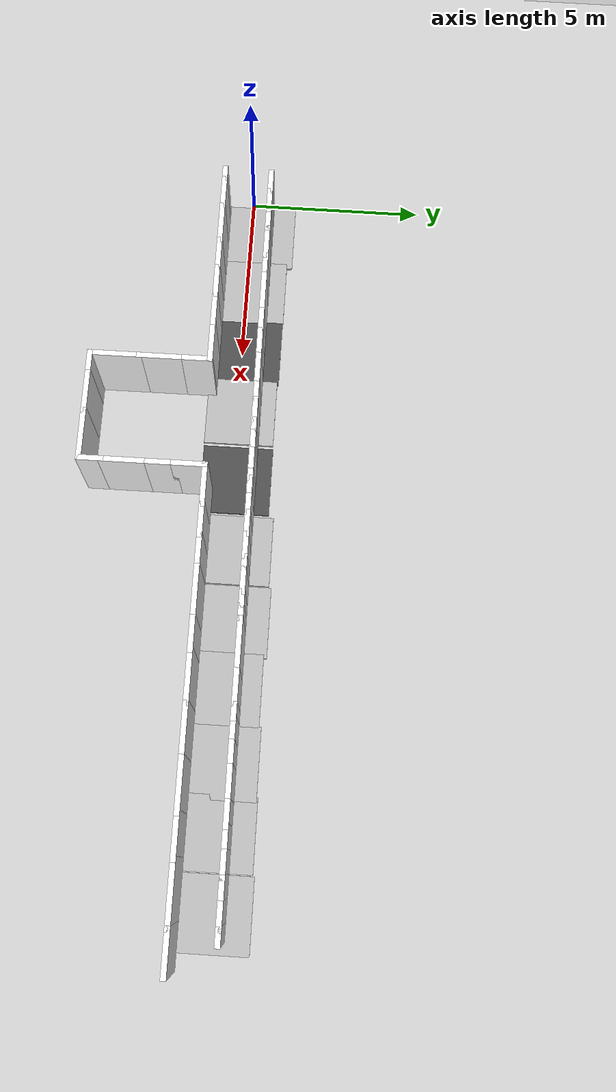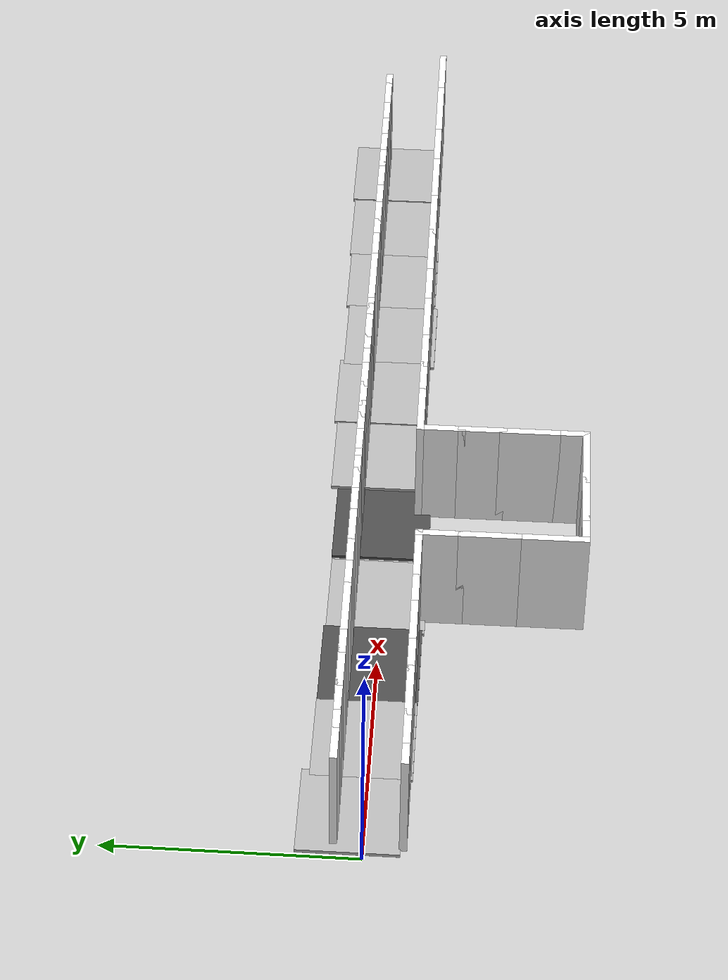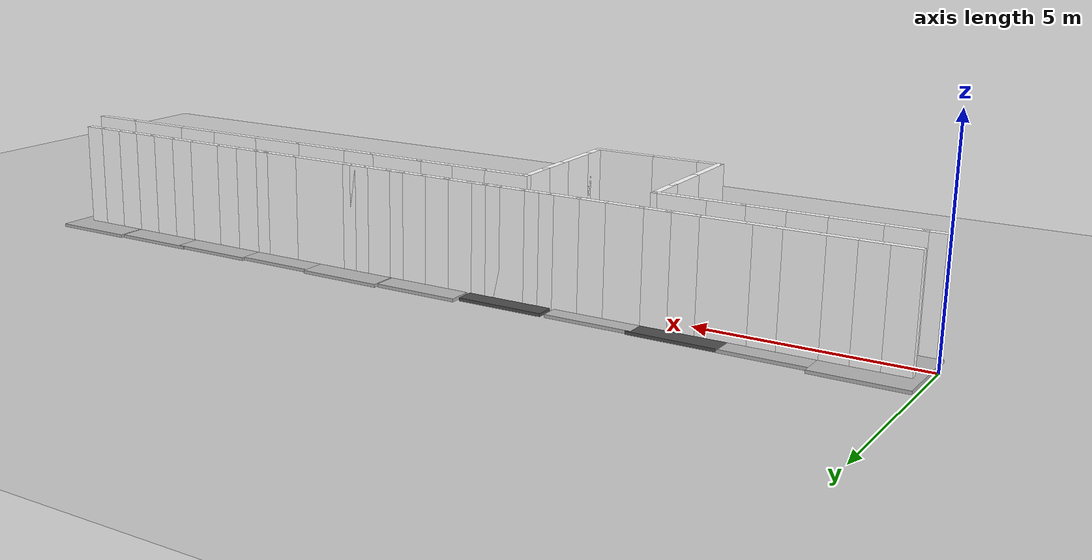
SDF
<sdf version="1.6">
 <world name="default">
  <model name="ground_plane">
   <static>1</static>
   <link name="link">
    <collision name="collision">
     <geometry><plane><normal>0 0 1</normal><size>100 100</size></plane></geometry>
     <surface><friction><ode><mu>100</mu><mu2>50</mu2></ode></friction></surface>
    </collision>
    <visual name="visual">
     <cast_shadows>0</cast_shadows>
     <geometry><plane><normal>0 0 1</normal><size>100 100</size></plane></geometry>
     <material>
      <script><uri>file://media/materials/scripts/gazebo.material</uri><name>Gazebo/Grey</name></script>
     </material>
    </visual>
   </link>
  </model>
  <model name="hightextured">
   <pose>14.0303 4.95039 0 0 0 -1.56774</pose>
   <link name="Wall_100">
    <collision name="Wall_100_Collision">
     <geometry><box><size>0.75 0.15 2.5</size></box></geometry>
     <pose>0 0 1.25 0 -0 0</pose>
    </collision>
    <visual name="Wall_100_Visual">
     <pose>0 0 1.25 0 -0 0</pose>
     <geometry><box><size>0.75 0.15 2.5</size></box></geometry>
     <material>
      <script><uri>file://media/materials/scripts/gazebo.material</uri><name>Gazebo/Texture3</name></script>
      <ambient>1 1 1 1</ambient>
     </material>
    </visual>
    <pose>4.33794 -5.0733 0 0 0 -1.5708</pose>
   </link>
   <link name="Wall_101">
    <collision name="Wall_101_Collision">
     <geometry><box><size>0.5 0.15 2.5</size></box></geometry>
     <pose>0 0 1.25 0 -0 0</pose>
    </collision>
    <visual name="Wall_101_Visual">
     <pose>0 0 1.25 0 -0 0</pose>
     <geometry><box><size>0.5 0.15 2.5</size></box></geometry>
     <material>
      <script><uri>file://media/materials/scripts/gazebo.material</uri><name>Gazebo/Texture11</name></script>
      <ambient>1 1 1 1</ambient>
     </material>
    </visual>
    <pose>4.33794 -5.5483 0 0 0 -1.5708</pose>
   </link>
   <link name="Wall_102">
    <collision name="Wall_102_Collision">
     <geometry><box><size>0.5 0.15 2.5</size></box></geometry>
     <pose>0 0 1.25 0 -0 0</pose>
    </collision>
    <visual name="Wall_102_Visual">
     <pose>0 0 1.25 0 -0 0</pose>
     <geometry><box><size>0.5 0.15 2.5</size></box></geometry>
     <material>
      <script><uri>file://media/materials/scripts/gazebo.material</uri><name>Gazebo/Texture4</name></script>
      <ambient>1 1 1 1</ambient>
     </material>
    </visual>
    <pose>4.33794 -5.8983 0 0 0 -1.5708</pose>
   </link>
   <link name="Wall_103">
    <collision name="Wall_103_Collision">
     <geometry><box><size>0.75 0.15 2.5</size></box></geometry>
     <pose>0 0 1.25 0 -0 0</pose>
    </collision>
    <visual name="Wall_103_Visual">
     <pose>0 0 1.25 0 -0 0</pose>
     <geometry><box><size>0.75 0.15 2.5</size></box></geometry>
     <material>
      <script><uri>file://media/materials/scripts/gazebo.material</uri><name>Gazebo/Texture5</name></script>
      <ambient>1 1 1 1</ambient>
     </material>
    </visual>
    <pose>4.33794 -6.3733 0 0 0 -1.5708</pose>
   </link>
   <link name="Wall_104">
    <collision name="Wall_104_Collision">
     <geometry><box><size>0.75 0.15 2.5</size></box></geometry>
     <pose>0 0 1.25 0 -0 0</pose>
    </collision>
    <visual name="Wall_104_Visual">
     <pose>0 0 1.25 0 -0 0</pose>
     <geometry><box><size>0.75 0.15 2.5</size></box></geometry>
     <material>
      <script><uri>file://media/materials/scripts/gazebo.material</uri><name>Gazebo/Texture6</name></script>
      <ambient>1 1 1 1</ambient>
     </material>
    </visual>
    <pose>4.33794 -6.9733 0 0 0 -1.5708</pose>
   </link>
   <link name="Wall_105">
    <collision name="Wall_105_Collision">
     <geometry><box><size>1 0.15 2.5</size></box></geometry>
     <pose>0 0 1.25 0 -0 0</pose>
    </collision>
    <visual name="Wall_105_Visual">
     <pose>0 0 1.25 0 -0 0</pose>
     <geometry><box><size>1 0.15 2.5</size></box></geometry>
     <material>
      <script><uri>file://media/materials/scripts/gazebo.material</uri><name>Gazebo/Texture7</name></script>
      <ambient>1 1 1 1</ambient>
     </material>
    </visual>
    <pose>4.33794 -7.6983 0 0 0 -1.5708</pose>
   </link>
   <link name="Wall_106">
    <collision name="Wall_106_Collision">
     <geometry><box><size>0.75 0.15 2.5</size></box></geometry>
     <pose>0 0 1.25 0 -0 0</pose>
    </collision>
    <visual name="Wall_106_Visual">
     <pose>0 0 1.25 0 -0 0</pose>
     <geometry><box><size>0.75 0.15 2.5</size></box></geometry>
     <material>
      <script><uri>file://media/materials/scripts/gazebo.material</uri><name>Gazebo/Texture8</name></script>
      <ambient>1 1 1 1</ambient>
     </material>
    </visual>
    <pose>4.33794 -8.4233 0 0 0 -1.5708</pose>
   </link>
   <link name="Wall_107">
    <collision name="Wall_107_Collision">
     <geometry><box><size>0.75 0.15 2.5</size></box></geometry>
     <pose>0 0 1.25 0 -0 0</pose>
    </collision>
    <visual name="Wall_107_Visual">
     <pose>0 0 1.25 0 -0 0</pose>
     <geometry><box><size>0.75 0.15 2.5</size></box></geometry>
     <material>
      <script><uri>file://media/materials/scripts/gazebo.material</uri><name>Gazebo/Texture9</name></script>
      <ambient>1 1 1 1</ambient>
     </material>
    </visual>
    <pose>4.33794 -9.0233 0 0 0 -1.5708</pose>
   </link>
   <link name="Wall_108">
    <collision name="Wall_108_Collision">
     <geometry><box><size>1.25 0.15 2.5</size></box></geometry>
     <pose>0 0 1.25 0 -0 0</pose>
    </collision>
    <visual name="Wall_108_Visual">
     <pose>0 0 1.25 0 -0 0</pose>
     <geometry><box><size>1.25 0.15 2.5</size></box></geometry>
     <material>
      <script><uri>file://media/materials/scripts/gazebo.material</uri><name>Gazebo/Texture10</name></script>
      <ambient>1 1 1 1</ambient>
     </material>
    </visual>
    <pose>4.33794 -9.8733 0 0 0 -1.5708</pose>
   </link>
   <link name="Wall_109">
    <collision name="Wall_109_Collision">
     <geometry><box><size>0.75 0.15 2.5</size></box></geometry>
     <pose>0 0 1.25 0 -0 0</pose>
    </collision>
    <visual name="Wall_109_Visual">
     <pose>0 0 1.25 0 -0 0</pose>
     <geometry><box><size>0.75 0.15 2.5</size></box></geometry>
     <material>
      <script><uri>file://media/materials/scripts/gazebo.material</uri><name>Gazebo/Texture11</name></script>
      <ambient>1 1 1 1</ambient>
     </material>
    </visual>
    <pose>4.33794 -10.7233 0 0 0 -1.5708</pose>
   </link>
   <link name="Wall_110">
    <collision name="Wall_110_Collision">
     <geometry><box><size>1 0.15 2.5</size></box></geometry>
     <pose>0 0 1.25 0 -0 0</pose>
    </collision>
    <visual name="Wall_110_Visual">
     <pose>0 0 1.25 0 -0 0</pose>
     <geometry><box><size>1 0.15 2.5</size></box></geometry>
     <material>
      <script><uri>file://media/materials/scripts/gazebo.material</uri><name>Gazebo/Texture13</name></script>
      <ambient>1 1 1 1</ambient>
     </material>
    </visual>
    <pose>4.33794 -11.4483 0 0 0 -1.5708</pose>
   </link>
   <link name="Wall_111">
    <collision name="Wall_111_Collision">
     <geometry><box><size>0.75 0.15 2.5</size></box></geometry>
     <pose>0 0 1.25 0 -0 0</pose>
    </collision>
    <visual name="Wall_111_Visual">
     <pose>0 0 1.25 0 -0 0</pose>
     <geometry><box><size>0.75 0.15 2.5</size></box></geometry>
     <material>
      <script><uri>file://media/materials/scripts/gazebo.material</uri><name>Gazebo/Texture14</name></script>
      <ambient>1 1 1 1</ambient>
     </material>
    </visual>
    <pose>4.33794 -12.1733 0 0 0 -1.5708</pose>
   </link>
   <link name="Wall_112">
    <collision name="Wall_112_Collision">
     <geometry><box><size>0.75 0.15 2.5</size></box></geometry>
     <pose>0 0 1.25 0 -0 0</pose>
    </collision>
    <visual name="Wall_112_Visual">
     <pose>0 0 1.25 0 -0 0</pose>
     <geometry><box><size>0.75 0.15 2.5</size></box></geometry>
     <material>
      <script><uri>file://media/materials/scripts/gazebo.material</uri><name>Gazebo/Texture15</name></script>
      <ambient>1 1 1 1</ambient>
     </material>
    </visual>
    <pose>4.33794 -12.7733 0 0 0 -1.5708</pose>
   </link>
   <link name="Wall_113">
    <collision name="Wall_113_Collision">
     <geometry><box><size>0.75 0.15 2.5</size></box></geometry>
     <pose>0 0 1.25 0 -0 0</pose>
    </collision>
    <visual name="Wall_113_Visual">
     <pose>0 0 1.25 0 -0 0</pose>
     <geometry><box><size>0.75 0.15 2.5</size></box></geometry>
     <material>
      <script><uri>file://media/materials/scripts/gazebo.material</uri><name>Gazebo/Texture16</name></script>
      <ambient>1 1 1 1</ambient>
     </material>
    </visual>
    <pose>4.33794 -13.3733 0 0 0 -1.5708</pose>
   </link>
   <link name="Wall_123">
    <collision name="Wall_123_Collision">
     <geometry><box><size>1.25 0.15 2.5</size></box></geometry>
     <pose>0 0 1.25 0 -0 0</pose>
    </collision>
    <visual name="Wall_123_Visual">
     <pose>0 0 1.25 0 -0 0</pose>
     <geometry><box><size>1.25 0.15 2.5</size></box></geometry>
     <material>
      <script><uri>file://media/materials/scripts/gazebo.material</uri><name>Gazebo/Texture12</name></script>
      <ambient>1 1 1 1</ambient>
     </material>
    </visual>
    <pose>5.56206 7.5733 0 0 0 -1.5708</pose>
   </link>
   <link name="Wall_124">
    <collision name="Wall_124_Collision">
     <geometry><box><size>1.75 0.15 2.5</size></box></geometry>
     <pose>0 0 1.25 0 -0 0</pose>
    </collision>
    <visual name="Wall_124_Visual">
     <pose>0 0 1.25 0 -0 0</pose>
     <geometry><box><size>1.75 0.15 2.5</size></box></geometry>
     <material>
      <script><uri>file://media/materials/scripts/gazebo.material</uri><name>Gazebo/Texture11</name></script>
      <ambient>1 1 1 1</ambient>
     </material>
    </visual>
    <pose>5.56206 6.2233 0 0 0 -1.5708</pose>
   </link>
   <link name="Wall_125">
    <collision name="Wall_125_Collision">
     <geometry><box><size>1.25 0.15 2.5</size></box></geometry>
     <pose>0 0 1.25 0 -0 0</pose>
    </collision>
    <visual name="Wall_125_Visual">
     <pose>0 0 1.25 0 -0 0</pose>
     <geometry><box><size>1.25 0.15 2.5</size></box></geometry>
     <material>
      <script><uri>file://media/materials/scripts/gazebo.material</uri><name>Gazebo/Texture10</name></script>
      <ambient>1 1 1 1</ambient>
     </material>
    </visual>
    <pose>5.56206 4.8733 0 0 0 -1.5708</pose>
   </link>
   <link name="Wall_126">
    <collision name="Wall_126_Collision">
     <geometry><box><size>1.5 0.15 2.5</size></box></geometry>
     <pose>0 0 1.25 0 -0 0</pose>
    </collision>
    <visual name="Wall_126_Visual">
     <pose>0 0 1.25 0 -0 0</pose>
     <geometry><box><size>1.5 0.15 2.5</size></box></geometry>
     <material>
      <script><uri>file://media/materials/scripts/gazebo.material</uri><name>Gazebo/Texture9</name></script>
      <ambient>1 1 1 1</ambient>
     </material>
    </visual>
    <pose>5.56206 3.6483 0 0 0 -1.5708</pose>
   </link>
   <link name="Wall_127">
    <collision name="Wall_127_Collision">
     <geometry><box><size>1.5 0.15 2.5</size></box></geometry>
     <pose>0 0 1.25 0 -0 0</pose>
    </collision>
    <visual name="Wall_127_Visual">
     <pose>0 0 1.25 0 -0 0</pose>
     <geometry><box><size>1.5 0.15 2.5</size></box></geometry>
     <material>
      <script><uri>file://media/materials/scripts/gazebo.material</uri><name>Gazebo/Texture8</name></script>
      <ambient>1 1 1 1</ambient>
     </material>
    </visual>
    <pose>5.56206 2.2983 0 0 0 -1.5708</pose>
   </link>
   <link name="Wall_128">
    <collision name="Wall_128_Collision">
     <geometry><box><size>1.5 0.15 2.5</size></box></geometry>
     <pose>0 0 1.25 0 -0 0</pose>
    </collision>
    <visual name="Wall_128_Visual">
     <pose>0 0 1.25 0 -0 0</pose>
     <geometry><box><size>1.5 0.15 2.5</size></box></geometry>
     <material>
      <script><uri>file://media/materials/scripts/gazebo.material</uri><name>Gazebo/Texture7</name></script>
      <ambient>1 1 1 1</ambient>
     </material>
    </visual>
    <pose>5.56206 0.948296 0 0 0 -1.5708</pose>
   </link>
   <link name="Wall_129">
    <collision name="Wall_129_Collision">
     <geometry><box><size>1 0.15 2.5</size></box></geometry>
     <pose>0 0 1.25 0 -0 0</pose>
    </collision>
    <visual name="Wall_129_Visual">
     <pose>0 0 1.25 0 -0 0</pose>
     <geometry><box><size>1 0.15 2.5</size></box></geometry>
     <material>
      <script><uri>file://media/materials/scripts/gazebo.material</uri><name>Gazebo/Texture6</name></script>
      <ambient>1 1 1 1</ambient>
     </material>
    </visual>
    <pose>5.56206 -0.151704 0 0 0 -1.5708</pose>
   </link>
   <link name="Wall_130">
    <collision name="Wall_130_Collision">
     <geometry><box><size>1.5 0.15 2.5</size></box></geometry>
     <pose>0 0 1.25 0 -0 0</pose>
    </collision>
    <visual name="Wall_130_Visual">
     <pose>0 0 1.25 0 -0 0</pose>
     <geometry><box><size>1.5 0.15 2.5</size></box></geometry>
     <material>
      <script><uri>file://media/materials/scripts/gazebo.material</uri><name>Gazebo/Texture4</name></script>
      <ambient>1 1 1 1</ambient>
     </material>
    </visual>
    <pose>5.56206 -1.2517 0 0 0 -1.5708</pose>
   </link>
   <link name="Wall_131">
    <collision name="Wall_131_Collision">
     <geometry><box><size>1 0.15 2.5</size></box></geometry>
     <pose>0 0 1.25 0 -0 0</pose>
    </collision>
    <visual name="Wall_131_Visual">
     <pose>0 0 1.25 0 -0 0</pose>
     <geometry><box><size>1 0.15 2.5</size></box></geometry>
     <material>
      <script><uri>file://media/materials/scripts/gazebo.material</uri><name>Gazebo/Texture3</name></script>
      <ambient>1 1 1 1</ambient>
     </material>
    </visual>
    <pose>5.56206 -2.3517 0 0 0 -1.5708</pose>
   </link>
   <link name="Wall_132">
    <collision name="Wall_132_Collision">
     <geometry><box><size>1 0.15 2.5</size></box></geometry>
     <pose>0 0 1.25 0 -0 0</pose>
    </collision>
    <visual name="Wall_132_Visual">
     <pose>0 0 1.25 0 -0 0</pose>
     <geometry><box><size>1 0.15 2.5</size></box></geometry>
     <material>
      <script><uri>file://media/materials/scripts/gazebo.material</uri><name>Gazebo/Texture2</name></script>
      <ambient>1 1 1 1</ambient>
     </material>
    </visual>
    <pose>5.56206 -3.2017 0 0 0 -1.5708</pose>
   </link>
   <link name="Wall_133">
    <collision name="Wall_133_Collision">
     <geometry><box><size>1.25 0.15 2.5</size></box></geometry>
     <pose>0 0 1.25 0 -0 0</pose>
    </collision>
    <visual name="Wall_133_Visual">
     <pose>0 0 1.25 0 -0 0</pose>
     <geometry><box><size>1.25 0.15 2.5</size></box></geometry>
     <material>
      <script><uri>file://media/materials/scripts/gazebo.material</uri><name>Gazebo/Texture1</name></script>
      <ambient>1 1 1 1</ambient>
     </material>
    </visual>
    <pose>5.56206 -4.1767 0 0 0 -1.5708</pose>
   </link>
   <link name="Wall_136">
    <collision name="Wall_136_Collision">
     <geometry><box><size>1 0.15 2.5</size></box></geometry>
     <pose>0 0 1.25 0 -0 0</pose>
    </collision>
    <visual name="Wall_136_Visual">
     <pose>0 0 1.25 0 -0 0</pose>
     <geometry><box><size>1 0.15 2.5</size></box></geometry>
     <material>
      <script><uri>file://media/materials/scripts/gazebo.material</uri><name>Gazebo/Texture2</name></script>
      <ambient>1 1 1 1</ambient>
     </material>
    </visual>
    <pose>5.98706 -4.7267 0 0 -0 0</pose>
   </link>
   <link name="Wall_137">
    <collision name="Wall_137_Collision">
     <geometry><box><size>1 0.15 2.5</size></box></geometry>
     <pose>0 0 1.25 0 -0 0</pose>
    </collision>
    <visual name="Wall_137_Visual">
     <pose>0 0 1.25 0 -0 0</pose>
     <geometry><box><size>1 0.15 2.5</size></box></geometry>
     <material>
      <script><uri>file://media/materials/scripts/gazebo.material</uri><name>Gazebo/Texture3</name></script>
      <ambient>1 1 1 1</ambient>
     </material>
    </visual>
    <pose>6.83706 -4.7267 0 0 -0 0</pose>
   </link>
   <link name="Wall_138">
    <collision name="Wall_138_Collision">
     <geometry><box><size>1.25 0.15 2.5</size></box></geometry>
     <pose>0 0 1.25 0 -0 0</pose>
    </collision>
    <visual name="Wall_138_Visual">
     <pose>0 0 1.25 0 -0 0</pose>
     <geometry><box><size>1.25 0.15 2.5</size></box></geometry>
     <material>
      <script><uri>file://media/materials/scripts/gazebo.material</uri><name>Gazebo/Texture4</name></script>
      <ambient>1 1 1 1</ambient>
     </material>
    </visual>
    <pose>7.81206 -4.7267 0 0 -0 0</pose>
   </link>
   <link name="Wall_139">
    <collision name="Wall_139_Collision">
     <geometry><box><size>0.75 0.15 2.5</size></box></geometry>
     <pose>0 0 1.25 0 -0 0</pose>
    </collision>
    <visual name="Wall_139_Visual">
     <pose>0 0 1.25 0 -0 0</pose>
     <geometry><box><size>0.75 0.15 2.5</size></box></geometry>
     <material>
      <script><uri>file://media/materials/scripts/gazebo.material</uri><name>Gazebo/Texture5</name></script>
      <ambient>1 1 1 1</ambient>
     </material>
    </visual>
    <pose>8.66206 -4.7267 0 0 -0 0</pose>
   </link>
   <link name="Wall_140">
    <collision name="Wall_140_Collision">
     <geometry><box><size>1.5 0.15 2.5</size></box></geometry>
     <pose>0 0 1.25 0 -0 0</pose>
    </collision>
    <visual name="Wall_140_Visual">
     <pose>0 0 1.25 0 -0 0</pose>
     <geometry><box><size>1.5 0.15 2.5</size></box></geometry>
     <material>
      <script><uri>file://media/materials/scripts/gazebo.material</uri><name>Gazebo/Texture7</name></script>
      <ambient>1 1 1 1</ambient>
     </material>
    </visual>
    <pose>8.96206 -5.4017 0 0 0 -1.5708</pose>
   </link>
   <link name="Wall_141">
    <collision name="Wall_141_Collision">
     <geometry><box><size>1.25 0.15 2.5</size></box></geometry>
     <pose>0 0 1.25 0 -0 0</pose>
    </collision>
    <visual name="Wall_141_Visual">
     <pose>0 0 1.25 0 -0 0</pose>
     <geometry><box><size>1.25 0.15 2.5</size></box></geometry>
     <material>
      <script><uri>file://media/materials/scripts/gazebo.material</uri><name>Gazebo/Texture8</name></script>
      <ambient>1 1 1 1</ambient>
     </material>
    </visual>
    <pose>8.96206 -6.6267 0 0 0 -1.5708</pose>
   </link>
   <link name="Wall_142">
    <collision name="Wall_142_Collision">
     <geometry><box><size>0.75 0.15 2.5</size></box></geometry>
     <pose>0 0 1.25 0 -0 0</pose>
    </collision>
    <visual name="Wall_142_Visual">
     <pose>0 0 1.25 0 -0 0</pose>
     <geometry><box><size>0.75 0.15 2.5</size></box></geometry>
     <material>
      <script><uri>file://media/materials/scripts/gazebo.material</uri><name>Gazebo/Texture9</name></script>
      <ambient>1 1 1 1</ambient>
     </material>
    </visual>
    <pose>8.96206 -7.4767 0 0 0 -1.5708</pose>
   </link>
   <link name="Wall_143">
    <collision name="Wall_143_Collision">
     <geometry><box><size>1.5 0.15 2.5</size></box></geometry>
     <pose>0 0 1.25 0 -0 0</pose>
    </collision>
    <visual name="Wall_143_Visual">
     <pose>0 0 1.25 0 -0 0</pose>
     <geometry><box><size>1.5 0.15 2.5</size></box></geometry>
     <material>
      <script><uri>file://media/materials/scripts/gazebo.material</uri><name>Gazebo/Texture10</name></script>
      <ambient>1 1 1 1</ambient>
     </material>
    </visual>
    <pose>8.28706 -7.7767 0 0 -0 3.14159</pose>
   </link>
   <link name="Wall_144">
    <collision name="Wall_144_Collision">
     <geometry><box><size>1.25 0.15 2.5</size></box></geometry>
     <pose>0 0 1.25 0 -0 0</pose>
    </collision>
    <visual name="Wall_144_Visual">
     <pose>0 0 1.25 0 -0 0</pose>
     <geometry><box><size>1.25 0.15 2.5</size></box></geometry>
     <material>
      <script><uri>file://media/materials/scripts/gazebo.material</uri><name>Gazebo/Texture11</name></script>
      <ambient>1 1 1 1</ambient>
     </material>
    </visual>
    <pose>7.06206 -7.7767 0 0 -0 3.14159</pose>
   </link>
   <link name="Wall_147">
    <collision name="Wall_147_Collision">
     <geometry><box><size>1 0.15 2.5</size></box></geometry>
     <pose>0 0 1.25 0 -0 0</pose>
    </collision>
    <visual name="Wall_147_Visual">
     <pose>0 0 1.25 0 -0 0</pose>
     <geometry><box><size>1 0.15 2.5</size></box></geometry>
     <material>
      <script><uri>file://media/materials/scripts/gazebo.material</uri><name>Gazebo/Texture12</name></script>
      <ambient>1 1 1 1</ambient>
     </material>
    </visual>
    <pose>6.08706 -7.7767 0 0 -0 3.14159</pose>
   </link>
   <link name="Wall_150">
    <collision name="Wall_150_Collision">
     <geometry><box><size>1.25 0.15 2.5</size></box></geometry>
     <pose>0 0 1.25 0 -0 0</pose>
    </collision>
    <visual name="Wall_150_Visual">
     <pose>0 0 1.25 0 -0 0</pose>
     <geometry><box><size>1.25 0.15 2.5</size></box></geometry>
     <material>
      <script><uri>file://media/materials/scripts/gazebo.material</uri><name>Gazebo/Texture14</name></script>
      <ambient>1 1 1 1</ambient>
     </material>
    </visual>
    <pose>5.66206 -8.3267 0 0 0 -1.5708</pose>
   </link>
   <link name="Wall_151">
    <collision name="Wall_151_Collision">
     <geometry><box><size>1 0.15 2.5</size></box></geometry>
     <pose>0 0 1.25 0 -0 0</pose>
    </collision>
    <visual name="Wall_151_Visual">
     <pose>0 0 1.25 0 -0 0</pose>
     <geometry><box><size>1 0.15 2.5</size></box></geometry>
     <material>
      <script><uri>file://media/materials/scripts/gazebo.material</uri><name>Gazebo/Texture15</name></script>
      <ambient>1 1 1 1</ambient>
     </material>
    </visual>
    <pose>5.66206 -9.3017 0 0 0 -1.5708</pose>
   </link>
   <link name="Wall_152">
    <collision name="Wall_152_Collision">
     <geometry><box><size>1 0.15 2.5</size></box></geometry>
     <pose>0 0 1.25 0 -0 0</pose>
    </collision>
    <visual name="Wall_152_Visual">
     <pose>0 0 1.25 0 -0 0</pose>
     <geometry><box><size>1 0.15 2.5</size></box></geometry>
     <material>
      <script><uri>file://media/materials/scripts/gazebo.material</uri><name>Gazebo/Texture16</name></script>
      <ambient>1 1 1 1</ambient>
     </material>
    </visual>
    <pose>5.66206 -10.1517 0 0 0 -1.5708</pose>
   </link>
   <link name="Wall_153">
    <collision name="Wall_153_Collision">
     <geometry><box><size>1 0.15 2.5</size></box></geometry>
     <pose>0 0 1.25 0 -0 0</pose>
    </collision>
    <visual name="Wall_153_Visual">
     <pose>0 0 1.25 0 -0 0</pose>
     <geometry><box><size>1 0.15 2.5</size></box></geometry>
     <material>
      <script><uri>file://media/materials/scripts/gazebo.material</uri><name>Gazebo/Texture17</name></script>
      <ambient>1 1 1 1</ambient>
     </material>
    </visual>
    <pose>5.66206 -11.0017 0 0 0 -1.5708</pose>
   </link>
   <link name="Wall_154">
    <collision name="Wall_154_Collision">
     <geometry><box><size>1.25 0.15 2.5</size></box></geometry>
     <pose>0 0 1.25 0 -0 0</pose>
    </collision>
    <visual name="Wall_154_Visual">
     <pose>0 0 1.25 0 -0 0</pose>
     <geometry><box><size>1.25 0.15 2.5</size></box></geometry>
     <material>
      <script><uri>file://media/materials/scripts/gazebo.material</uri><name>Gazebo/Texture18</name></script>
      <ambient>1 1 1 1</ambient>
     </material>
    </visual>
    <pose>5.66206 -11.9767 0 0 0 -1.5708</pose>
   </link>
   <link name="Wall_155">
    <collision name="Wall_155_Collision">
     <geometry><box><size>1 0.15 2.5</size></box></geometry>
     <pose>0 0 1.25 0 -0 0</pose>
    </collision>
    <visual name="Wall_155_Visual">
     <pose>0 0 1.25 0 -0 0</pose>
     <geometry><box><size>1 0.15 2.5</size></box></geometry>
     <material>
      <script><uri>file://media/materials/scripts/gazebo.material</uri><name>Gazebo/Texture17</name></script>
      <ambient>1 1 1 1</ambient>
     </material>
    </visual>
    <pose>5.66206 -12.9517 0 0 0 -1.5708</pose>
   </link>
   <link name="Wall_156">
    <collision name="Wall_156_Collision">
     <geometry><box><size>0.5 0.15 2.5</size></box></geometry>
     <pose>0 0 1.25 0 -0 0</pose>
    </collision>
    <visual name="Wall_156_Visual">
     <pose>0 0 1.25 0 -0 0</pose>
     <geometry><box><size>0.5 0.15 2.5</size></box></geometry>
     <material>
      <script><uri>file://media/materials/scripts/gazebo.material</uri><name>Gazebo/Texture16</name></script>
      <ambient>1 1 1 1</ambient>
     </material>
    </visual>
    <pose>5.66206 -13.5517 0 0 0 -1.5708</pose>
   </link>
   <link name="Wall_74">
    <collision name="Wall_74_Collision">
     <geometry><box><size>0.5 0.15 2.5</size></box></geometry>
     <pose>0 0 1.25 0 -0 0</pose>
    </collision>
    <visual name="Wall_74_Visual">
     <pose>0 0 1.25 0 -0 0</pose>
     <geometry><box><size>0.5 0.15 2.5</size></box></geometry>
     <material>
      <script><uri>file://media/materials/scripts/gazebo.material</uri><name>Gazebo/Texture11</name></script>
      <ambient>1 1 1 1</ambient>
     </material>
    </visual>
    <pose>4.33794 7.1517 0 0 0 -1.5708</pose>
   </link>
   <link name="Wall_75">
    <collision name="Wall_75_Collision">
     <geometry><box><size>0.75 0.15 2.5</size></box></geometry>
     <pose>0 0 1.25 0 -0 0</pose>
    </collision>
    <visual name="Wall_75_Visual">
     <pose>0 0 1.25 0 -0 0</pose>
     <geometry><box><size>0.75 0.15 2.5</size></box></geometry>
     <material>
      <script><uri>file://media/materials/scripts/gazebo.material</uri><name>Gazebo/Texture11</name></script>
      <ambient>1 1 1 1</ambient>
     </material>
    </visual>
    <pose>4.33794 6.6767 0 0 0 -1.5708</pose>
   </link>
   <link name="Wall_76">
    <collision name="Wall_76_Collision">
     <geometry><box><size>0.75 0.15 2.5</size></box></geometry>
     <pose>0 0 1.25 0 -0 0</pose>
    </collision>
    <visual name="Wall_76_Visual">
     <pose>0 0 1.25 0 -0 0</pose>
     <geometry><box><size>0.75 0.15 2.5</size></box></geometry>
     <material>
      <script><uri>file://media/materials/scripts/gazebo.material</uri><name>Gazebo/Texture11</name></script>
      <ambient>1 1 1 1</ambient>
     </material>
    </visual>
    <pose>4.33794 6.0767 0 0 0 -1.5708</pose>
   </link>
   <link name="Wall_77">
    <collision name="Wall_77_Collision">
     <geometry><box><size>0.75 0.15 2.5</size></box></geometry>
     <pose>0 0 1.25 0 -0 0</pose>
    </collision>
    <visual name="Wall_77_Visual">
     <pose>0 0 1.25 0 -0 0</pose>
     <geometry><box><size>0.75 0.15 2.5</size></box></geometry>
     <material>
      <script><uri>file://media/materials/scripts/gazebo.material</uri><name>Gazebo/Texture11</name></script>
      <ambient>1 1 1 1</ambient>
     </material>
    </visual>
    <pose>4.33794 5.4767 0 0 0 -1.5708</pose>
   </link>
   <link name="Wall_78">
    <collision name="Wall_78_Collision">
     <geometry><box><size>0.75 0.15 2.5</size></box></geometry>
     <pose>0 0 1.25 0 -0 0</pose>
    </collision>
    <visual name="Wall_78_Visual">
     <pose>0 0 1.25 0 -0 0</pose>
     <geometry><box><size>0.75 0.15 2.5</size></box></geometry>
     <material>
      <script><uri>file://media/materials/scripts/gazebo.material</uri><name>Gazebo/Texture11</name></script>
      <ambient>1 1 1 1</ambient>
     </material>
    </visual>
    <pose>4.33794 4.8767 0 0 0 -1.5708</pose>
   </link>
   <link name="Wall_79">
    <collision name="Wall_79_Collision">
     <geometry><box><size>0.75 0.15 2.5</size></box></geometry>
     <pose>0 0 1.25 0 -0 0</pose>
    </collision>
    <visual name="Wall_79_Visual">
     <pose>0 0 1.25 0 -0 0</pose>
     <geometry><box><size>0.75 0.15 2.5</size></box></geometry>
     <material>
      <script><uri>file://media/materials/scripts/gazebo.material</uri><name>Gazebo/Texture11</name></script>
      <ambient>1 1 1 1</ambient>
     </material>
    </visual>
    <pose>4.33794 4.2767 0 0 0 -1.5708</pose>
   </link>
   <link name="Wall_80">
    <collision name="Wall_80_Collision">
     <geometry><box><size>1 0.15 2.5</size></box></geometry>
     <pose>0 0 1.25 0 -0 0</pose>
    </collision>
    <visual name="Wall_80_Visual">
     <pose>0 0 1.25 0 -0 0</pose>
     <geometry><box><size>1 0.15 2.5</size></box></geometry>
     <material>
      <script><uri>file://media/materials/scripts/gazebo.material</uri><name>Gazebo/Texture11</name></script>
      <ambient>1 1 1 1</ambient>
     </material>
    </visual>
    <pose>4.33794 3.5517 0 0 0 -1.5708</pose>
   </link>
   <link name="Wall_81">
    <collision name="Wall_81_Collision">
     <geometry><box><size>0.75 0.15 2.5</size></box></geometry>
     <pose>0 0 1.25 0 -0 0</pose>
    </collision>
    <visual name="Wall_81_Visual">
     <pose>0 0 1.25 0 -0 0</pose>
     <geometry><box><size>0.75 0.15 2.5</size></box></geometry>
     <material>
      <script><uri>file://media/materials/scripts/gazebo.material</uri><name>Gazebo/Texture11</name></script>
      <ambient>1 1 1 1</ambient>
     </material>
    </visual>
    <pose>4.33794 2.8267 0 0 0 -1.5708</pose>
   </link>
   <link name="Wall_82">
    <collision name="Wall_82_Collision">
     <geometry><box><size>0.75 0.15 2.5</size></box></geometry>
     <pose>0 0 1.25 0 -0 0</pose>
    </collision>
    <visual name="Wall_82_Visual">
     <pose>0 0 1.25 0 -0 0</pose>
     <geometry><box><size>0.75 0.15 2.5</size></box></geometry>
     <material>
      <script><uri>file://media/materials/scripts/gazebo.material</uri><name>Gazebo/Texture11</name></script>
      <ambient>1 1 1 1</ambient>
     </material>
    </visual>
    <pose>4.33794 2.2267 0 0 0 -1.5708</pose>
   </link>
   <link name="Wall_83">
    <collision name="Wall_83_Collision">
     <geometry><box><size>0.5 0.15 2.5</size></box></geometry>
     <pose>0 0 1.25 0 -0 0</pose>
    </collision>
    <visual name="Wall_83_Visual">
     <pose>0 0 1.25 0 -0 0</pose>
     <geometry><box><size>0.5 0.15 2.5</size></box></geometry>
     <material>
      <script><uri>file://media/materials/scripts/gazebo.material</uri><name>Gazebo/Texture11</name></script>
      <ambient>1 1 1 1</ambient>
     </material>
    </visual>
    <pose>4.33794 1.7517 0 0 0 -1.5708</pose>
   </link>
   <link name="Wall_84">
    <collision name="Wall_84_Collision">
     <geometry><box><size>1 0.15 2.5</size></box></geometry>
     <pose>0 0 1.25 0 -0 0</pose>
    </collision>
    <visual name="Wall_84_Visual">
     <pose>0 0 1.25 0 -0 0</pose>
     <geometry><box><size>1 0.15 2.5</size></box></geometry>
     <material>
      <script><uri>file://media/materials/scripts/gazebo.material</uri><name>Gazebo/Texture11</name></script>
      <ambient>1 1 1 1</ambient>
     </material>
    </visual>
    <pose>4.33794 1.1517 0 0 0 -1.5708</pose>
   </link>
   <link name="Wall_85">
    <collision name="Wall_85_Collision">
     <geometry><box><size>1.5 0.15 2.5</size></box></geometry>
     <pose>0 0 1.25 0 -0 0</pose>
    </collision>
    <visual name="Wall_85_Visual">
     <pose>0 0 1.25 0 -0 0</pose>
     <geometry><box><size>1.5 0.15 2.5</size></box></geometry>
     <material>
      <script><uri>file://media/materials/scripts/gazebo.material</uri><name>Gazebo/Texture11</name></script>
      <ambient>1 1 1 1</ambient>
     </material>
    </visual>
    <pose>4.33794 0.051704 0 0 0 -1.5708</pose>
   </link>
   <link name="Wall_91">
    <collision name="Wall_91_Collision">
     <geometry><box><size>0.5 0.15 2.5</size></box></geometry>
     <pose>0 0 1.25 0 -0 0</pose>
    </collision>
    <visual name="Wall_91_Visual">
     <pose>0 0 1.25 0 -0 0</pose>
     <geometry><box><size>0.5 0.15 2.5</size></box></geometry>
     <material>
      <script><uri>file://media/materials/scripts/gazebo.material</uri><name>Gazebo/Texture11</name></script>
      <ambient>1 1 1 1</ambient>
     </material>
    </visual>
    <pose>4.33794 -0.798296 0 0 0 -1.5708</pose>
   </link>
   <link name="Wall_92">
    <collision name="Wall_92_Collision">
     <geometry><box><size>0.5 0.15 2.5</size></box></geometry>
     <pose>0 0 1.25 0 -0 0</pose>
    </collision>
    <visual name="Wall_92_Visual">
     <pose>0 0 1.25 0 -0 0</pose>
     <geometry><box><size>0.5 0.15 2.5</size></box></geometry>
     <material>
      <script><uri>file://media/materials/scripts/gazebo.material</uri><name>Gazebo/Texture11</name></script>
      <ambient>1 1 1 1</ambient>
     </material>
    </visual>
    <pose>4.33794 -1.1483 0 0 0 -1.5708</pose>
   </link>
   <link name="Wall_93">
    <collision name="Wall_93_Collision">
     <geometry><box><size>0.75 0.15 2.5</size></box></geometry>
     <pose>0 0 1.25 0 -0 0</pose>
    </collision>
    <visual name="Wall_93_Visual">
     <pose>0 0 1.25 0 -0 0</pose>
     <geometry><box><size>0.75 0.15 2.5</size></box></geometry>
     <material>
      <script><uri>file://media/materials/scripts/gazebo.material</uri><name>Gazebo/Texture11</name></script>
      <ambient>1 1 1 1</ambient>
     </material>
    </visual>
    <pose>4.33794 -1.6233 0 0 0 -1.5708</pose>
   </link>
   <link name="Wall_94">
    <collision name="Wall_94_Collision">
     <geometry><box><size>0.5 0.15 2.5</size></box></geometry>
     <pose>0 0 1.25 0 -0 0</pose>
    </collision>
    <visual name="Wall_94_Visual">
     <pose>0 0 1.25 0 -0 0</pose>
     <geometry><box><size>0.5 0.15 2.5</size></box></geometry>
     <material>
      <script><uri>file://media/materials/scripts/gazebo.material</uri><name>Gazebo/Texture11</name></script>
      <ambient>1 1 1 1</ambient>
     </material>
    </visual>
    <pose>4.33794 -2.0983 0 0 0 -1.5708</pose>
   </link>
   <link name="Wall_95">
    <collision name="Wall_95_Collision">
     <geometry><box><size>0.75 0.15 2.5</size></box></geometry>
     <pose>0 0 1.25 0 -0 0</pose>
    </collision>
    <visual name="Wall_95_Visual">
     <pose>0 0 1.25 0 -0 0</pose>
     <geometry><box><size>0.75 0.15 2.5</size></box></geometry>
     <material>
      <script><uri>file://media/materials/scripts/gazebo.material</uri><name>Gazebo/Texture11</name></script>
      <ambient>1 1 1 1</ambient>
     </material>
    </visual>
    <pose>4.33794 -2.5733 0 0 0 -1.5708</pose>
   </link>
   <link name="Wall_96">
    <collision name="Wall_96_Collision">
     <geometry><box><size>0.75 0.15 2.5</size></box></geometry>
     <pose>0 0 1.25 0 -0 0</pose>
    </collision>
    <visual name="Wall_96_Visual">
     <pose>0 0 1.25 0 -0 0</pose>
     <geometry><box><size>0.75 0.15 2.5</size></box></geometry>
     <material>
      <script><uri>file://media/materials/scripts/gazebo.material</uri><name>Gazebo/Texture11</name></script>
      <ambient>1 1 1 1</ambient>
     </material>
    </visual>
    <pose>4.33794 -3.1733 0 0 0 -1.5708</pose>
   </link>
   <link name="Wall_97">
    <collision name="Wall_97_Collision">
     <geometry><box><size>0.75 0.15 2.5</size></box></geometry>
     <pose>0 0 1.25 0 -0 0</pose>
    </collision>
    <visual name="Wall_97_Visual">
     <pose>0 0 1.25 0 -0 0</pose>
     <geometry><box><size>0.75 0.15 2.5</size></box></geometry>
     <material>
      <script><uri>file://media/materials/scripts/gazebo.material</uri><name>Gazebo/Texture11</name></script>
      <ambient>1 1 1 1</ambient>
     </material>
    </visual>
    <pose>4.33794 -3.7733 0 0 0 -1.5708</pose>
   </link>
   <link name="Wall_98">
    <collision name="Wall_98_Collision">
     <geometry><box><size>0.5 0.15 2.5</size></box></geometry>
     <pose>0 0 1.25 0 -0 0</pose>
    </collision>
    <visual name="Wall_98_Visual">
     <pose>0 0 1.25 0 -0 0</pose>
     <geometry><box><size>0.5 0.15 2.5</size></box></geometry>
     <material>
      <script><uri>file://media/materials/scripts/gazebo.material</uri><name>Gazebo/Texture11</name></script>
      <ambient>1 1 1 1</ambient>
     </material>
    </visual>
    <pose>4.33794 -4.2483 0 0 0 -1.5708</pose>
   </link>
   <link name="Wall_99">
    <collision name="Wall_99_Collision">
     <geometry><box><size>0.5 0.15 2.5</size></box></geometry>
     <pose>0 0 1.25 0 -0 0</pose>
    </collision>
    <visual name="Wall_99_Visual">
     <pose>0 0 1.25 0 -0 0</pose>
     <geometry><box><size>0.5 0.15 2.5</size></box></geometry>
     <material>
      <script><uri>file://media/materials/scripts/gazebo.material</uri><name>Gazebo/Texture11</name></script>
      <ambient>1 1 1 1</ambient>
     </material>
    </visual>
    <pose>4.33794 -4.5983 0 0 0 -1.5708</pose>
   </link>
   <static>1</static>
  </model>
  <model name="texture1">
   <static>1</static>
   <link name="link">
    <collision name="collision"><geometry><box><size>2 2 0.1</size></box></geometry></collision>
    <visual name="visual">
     <cast_shadows>0</cast_shadows>
     <geometry><box><size>2 2 0.1</size></box></geometry>
     <material>
      <script>
       <uri>model://texture1/materials/scripts</uri>
       <uri>model://texture1/materials/textures</uri>
       <name>vrc/texture1</name>
      </script>
     </material>
    </visual>
   </link>
   <pose>1.10495 0.295237 0 0 -0 0</pose>
  </model>
  <model name="texture2">
   <static>1</static>
   <link name="link">
    <collision name="collision"><geometry><box><size>2 2 0.1</size></box></geometry></collision>
    <visual name="visual">
     <cast_shadows>0</cast_shadows>
     <geometry><box><size>2 2 0.1</size></box></geometry>
     <material>
      <script>
       <uri>model://texture2/materials/scripts</uri>
       <uri>model://texture2/materials/textures</uri>
       <name>vrc/texture2</name>
      </script>
     </material>
    </visual>
   </link>
   <pose>2.96191 0.141057 0 0 -0 0</pose>
  </model>
  <model name="asphalt_plane_0">
   <static>1</static>
   <link name="link">
    <collision name="collision"><geometry><box><size>2 2 0.1</size></box></geometry></collision>
    <visual name="visual">
     <cast_shadows>0</cast_shadows>
     <geometry><box><size>2 2 0.1</size></box></geometry>
     <material>
      <script>
       <uri>model://texture3/materials/scripts</uri>
       <uri>model://texture3/materials/textures</uri>
       <name>vrc/asphalt</name>
      </script>
     </material>
    </visual>
   </link>
   <pose>4.92771 0.130261 0 0 -0 0</pose>
  </model>
  <model name="texture4">
   <static>1</static>
   <link name="link">
    <collision name="collision"><geometry><box><size>2 2 0.1</size></box></geometry></collision>
    <visual name="visual">
     <cast_shadows>0</cast_shadows>
     <geometry><box><size>2 2 0.1</size></box></geometry>
     <material>
      <script>
       <uri>model://texture4/materials/scripts</uri>
       <uri>model://texture4/materials/textures</uri>
       <name>vrc/texture4</name>
      </script>
     </material>
    </visual>
   </link>
   <pose>6.82601 0.089876 0 0 -0 0</pose>
  </model>
  <model name="asphalt_plane_1">
   <static>1</static>
   <link name="link">
    <collision name="collision"><geometry><box><size>2 2 0.1</size></box></geometry></collision>
    <visual name="visual">
     <cast_shadows>0</cast_shadows>
     <geometry><box><size>2 2 0.1</size></box></geometry>
     <material>
      <script>
       <uri>model://texture3/materials/scripts</uri>
       <uri>model://texture3/materials/textures</uri>
       <name>vrc/asphalt</name>
      </script>
     </material>
    </visual>
   </link>
   <pose>8.9255 0.101752 0 0 -0 0</pose>
  </model>
  <model name="texture1_0">
   <static>1</static>
   <link name="link">
    <collision name="collision"><geometry><box><size>2 2 0.1</size></box></geometry></collision>
    <visual name="visual">
     <cast_shadows>0</cast_shadows>
     <geometry><box><size>2 2 0.1</size></box></geometry>
     <material>
      <script>
       <uri>model://texture1/materials/scripts</uri>
       <uri>model://texture1/materials/textures</uri>
       <name>vrc/texture1</name>
      </script>
     </material>
    </visual>
   </link>
   <pose>10.9914 0.247959 0 0 -0 0</pose>
  </model>
  <model name="texture2_0">
   <static>1</static>
   <link name="link">
    <collision name="collision"><geometry><box><size>2 2 0.1</size></box></geometry></collision>
    <visual name="visual">
     <cast_shadows>0</cast_shadows>
     <geometry><box><size>2 2 0.1</size></box></geometry>
     <material>
      <script>
       <uri>model://texture2/materials/scripts</uri>
       <uri>model://texture2/materials/textures</uri>
       <name>vrc/texture2</name>
      </script>
     </material>
    </visual>
   </link>
   <pose>13.0232 0.313178 0 0 -0 0</pose>
  </model>
  <model name="texture4_0">
   <static>1</static>
   <link name="link">
    <collision name="collision"><geometry><box><size>2 2 0.1</size></box></geometry></collision>
    <visual name="visual">
     <cast_shadows>0</cast_shadows>
     <geometry><box><size>2 2 0.1</size></box></geometry>
     <material>
      <script>
       <uri>model://texture4/materials/scripts</uri>
       <uri>model://texture4/materials/textures</uri>
       <name>vrc/texture4</name>
      </script>
     </material>
    </visual>
   </link>
   <pose>14.914 0.230506 0 0 -0 0</pose>
  </model>
  <model name="texture1_1">
   <static>1</static>
   <link name="link">
    <collision name="collision"><geometry><box><size>2 2 0.1</size></box></geometry></collision>
    <visual name="visual">
     <cast_shadows>0</cast_shadows>
     <geometry><box><size>2 2 0.1</size></box></geometry>
     <material>
      <script>
       <uri>model://texture1/materials/scripts</uri>
       <uri>model://texture1/materials/textures</uri>
       <name>vrc/texture1</name>
      </script>
     </material>
    </visual>
   </link>
   <pose>16.8942 0.293258 0 0 -0 0</pose>
  </model>
  <model name="texture2_1">
   <static>1</static>
   <link name="link">
    <collision name="collision"><geometry><box><size>2 2 0.1</size></box></geometry></collision>
    <visual name="visual">
     <cast_shadows>0</cast_shadows>
     <geometry><box><size>2 2 0.1</size></box></geometry>
     <material>
      <script>
       <uri>model://texture2/materials/scripts</uri>
       <uri>model://texture2/materials/textures</uri>
       <name>vrc/texture2</name>
      </script>
     </material>
    </visual>
   </link>
   <pose>18.7448 0.32807 0 0 -0 0</pose>
  </model>
  <model name="texture4_1">
   <static>1</static>
   <link name="link">
    <collision name="collision"><geometry><box><size>2 2 0.1</size></box></geometry></collision>
    <visual name="visual">
     <cast_shadows>0</cast_shadows>
     <geometry><box><size>2 2 0.1</size></box></geometry>
     <material>
      <script>
       <uri>model://texture4/materials/scripts</uri>
       <uri>model://texture4/materials/textures</uri>
       <name>vrc/texture4</name>
      </script>
     </material>
    </visual>
   </link>
   <pose>20.7743 0.376329 0 0 -0 0</pose>
  </model>
 </world>
</sdf>
